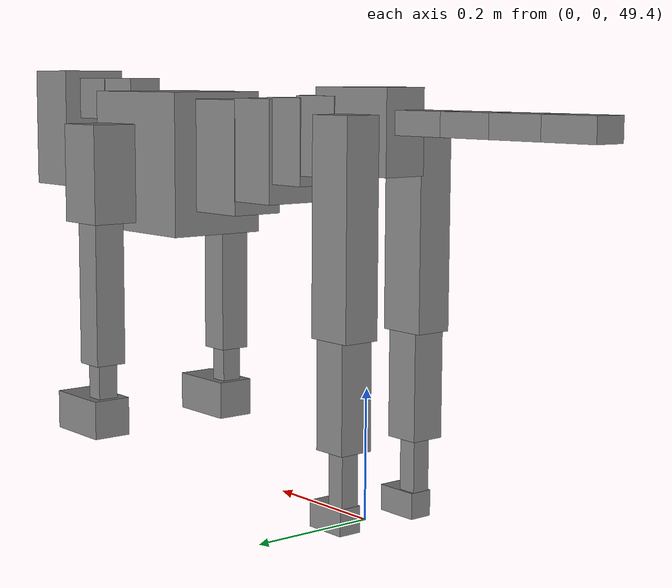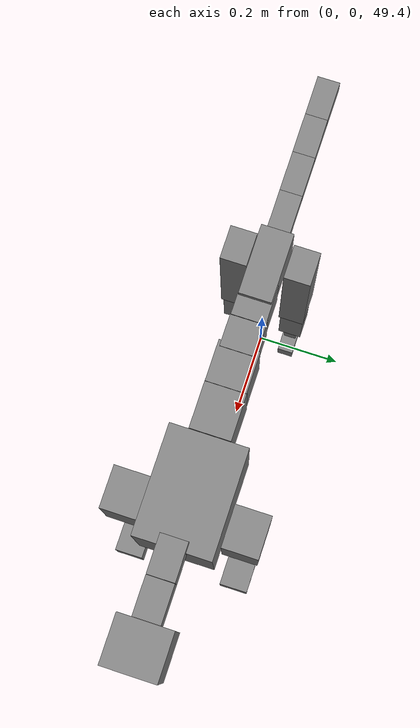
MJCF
<mujoco model="dog">

    <default>
        <joint armature="0.02" stiffness="1" damping="0.2" limited="true"/>
        <geom condim="3" friction="1 0.05 0.05" margin="0.01"/>
        <motor ctrllimited="true" ctrlrange="-1.0 1.0" forcelimited="true" gear="50"/>
    </default>

    <compiler inertiafromgeom="true" angle="radian"/>

    <option timestep="0.016" iterations="50" tolerance="1e-10" solver="Newton" jacobian="dense" cone="pyramidal"/>

    <size nconmax="20000" njmax="60000" nstack="5000000"/>
    <visual>
        <map force="0.1" zfar="30"/>
        <rgba haze="0.15 0.25 0.35 1"/>
        <quality shadowsize="2048"/>
        <global offwidth="800" offheight="800"/>
    </visual>

    <asset>
        <texture type="skybox" builtin="gradient" rgb1="0.3 0.5 0.7" rgb2="0 0 0" width="512" height="512"/>
        <texture name="texplane" type="2d" builtin="checker" rgb1=".2 .3 .4" rgb2=".1 0.15 0.2" width="512" height="512"
                 mark="cross" markrgb=".8 .8 .8"/>
        <texture name="texgeom" type="cube" builtin="flat" mark="cross" width="127" height="1278" rgb1="0.8 0.6 0.4"
                 rgb2="0.8 0.6 0.4" markrgb="1 1 1" random="0.01"/>

        <material name="matplane" reflectance="0.3" texture="texplane" texrepeat="1 1" texuniform="true"/>
        <material name="matgeom" texture="texgeom" texuniform="true" rgba="0.8 0.6 .4 1"/>
    </asset>

    <worldbody>
        <geom name="floor" pos="0 0 0" size="0 0 .25" type="plane" material="matplane" condim="3"/>

        <light directional="false" diffuse=".2 .2 .2" specular="0 0 0" pos="0 0 5" dir="0 0 -1" castshadow="false"/>
        <light mode="targetbodycom" target="torso" directional="false" diffuse=".8 .8 .8" specular="0.3 0.3 0.3"
               pos="0 0 4.0" dir="0 0 -1"/>

        <body name="root" pos="0 0 50">
            <freejoint name="root_1"/>
            <geom type="box" pos="0 0 -0.02" size="0.0774  0.0358  0.063" density="2030"/>

            <body name="spine1" pos="0.054 0 0">
                <joint name="spine1_y" axis="0 1 0" range="0 0.7" limited="true"/>
                <geom type="box" pos="0.02375 0 -0.03" size="0.04375  0.0375  0.05985" density="2030"/>

                <body name="spine2" pos="0.0612 0 0">
                    <joint name="spine2_y" axis="0 1 0" range="-0.15 0.15" limited="true"/>
                    <geom type="box" pos="0.03555  0  -0.04" size="0.04055  0.039  0.06615" density="2030"/>

                    <body name="spine3" pos="0.0730 0 0">
                        <joint name="spine3_y" axis="0 1 0" range="-0.15 0.15" limited="true"/>
                        <geom type="box" pos="0.03555  0  -0.057" size="0.04555  0.0445  0.081" density="2030"/>

                        <body name="spine4" pos="0.0780 0 0">
                            <joint name="spine4_y" axis="0 1 0" range="-0.15 0.15" limited="true"/>
                            <geom type="box" pos="0.05265  0  -0.07" size="0.05265  0.045  0.09135" density="2030"/>

                            <body name="torso" pos="0.1082 0 0">
                                <joint name="torso_y" axis="0 1 0" range="-0.15 0.15" limited="true"/>
                                <geom type="box" pos="0.11925  0  -0.085" size="0.11925  0.085  0.11745"
                                      density="2030"/>

                                <body name="neck1" pos="0.2160  0   0.0180">
                                    <joint name="neck1_y" axis="0 1 0" range="-1.2  -1" limited="true"/>
                                    <geom type="box" pos="0.0423  0  0" size="0.0423  0.03  0.036" density="2325"/>

                                    <body name="neck2" pos="0.0853  0  0">
                                        <joint name="neck2_y" axis="0 1 0" range="0.1  0" limited="true"/>
                                        <geom type="box" pos="0.0423  0  0" size="0.0423  0.03  0.036" density="2325"/>

                                        <body name="head" pos="0.0853  0  0">
                                            <joint name="head_y" axis="0 1 0" range="-0.3  -0.2" limited="true"/>
                                            <geom type="box" pos="0.0531  0  -0.055" size="0.0531  0.06  0.1044"
                                                  density="4030"/>

                                        </body>
                                    </body>
                                </body>

                                <body name="front_shoulder" pos="0.156  0   -0.0480">
                                    <joint name="front_shoulder_y" axis="0 1 0" range="-1 1.5" limited="true"/>
                                    <geom type="box" pos="0 0.13 -0.0555" size="0.0466  0.0398  0.0822" density="1158"/>
                                    <geom type="box" pos="0 -0.13 -0.0555" size="0.0466  0.0398  0.0822"
                                          density="1158"/>

                                    <body name="front_elbow" pos="0  0  -0.1111">
                                        <joint name="front_elbow_y" axis="0 1 0" range="-2 0" limited="true"/>
                                        <geom type="box" pos="0 0.13 -0.1342" size="0.0267  0.0273  0.1342"
                                              density="1081"/>
                                        <geom type="box" pos="0 -0.13 -0.1342" size="0.0267  0.0273  0.1342"
                                              density="1081"/>

                                        <body name="front_wrist" pos="0  0  -0.2684">
                                            <joint name="front_wrist_y" axis="0 1 0" range="-0.2 0" limited="true"/>
                                            <geom type="box" pos="0 0.13 -0.0369" size="0.0159  0.0177  0.0501"
                                                  density="1664"/>
                                            <geom type="box" pos="0 -0.13 -0.0369" size="0.0159  0.0177  0.0501"
                                                  density="1664"/>

                                            <body name="front_finger_end" pos="0  0  -0.0739">
                                                <joint name="front_finger_y" axis="0 1 0" range="-0.4 1"
                                                       limited="true"/>
                                                <geom type="box" pos="0.0331  0.13  -0.0174"
                                                      size="0.0608  0.0331  0.0324" density="1515"/>
                                                <geom type="box" pos="0.0331  -0.13  -0.0174"
                                                      size="0.0608  0.0331  0.0324" density="1515"/>

                                            </body>

                                        </body>
                                    </body>
                                </body>

                            </body>
                        </body>
                    </body>
                </body>
            </body>

            <body name="back_hip" pos="-0.03 0 -0.018">
                <joint name="back_hip_y" axis="0 1 0" range="-1.5 0.3" limited="true"/>
                <geom type="box" pos="0 0.07 -0.1371" size="0.0375  0.0294  0.1599" density="1154"/>
                <geom type="box" pos="0 -0.07 -0.1371" size="0.0375  0.0294  0.1599" density="1154"/>

                <body name="back_knee" pos="0  0  -0.2742">
                    <joint name="back_knee_y" axis="0 1 0" range="0 2.8" limited="true"/>
                    <geom type="box" pos="0 0.07 -0.0848" size="0.0278  0.0274  0.1003" density="1227"/>
                    <geom type="box" pos="0 -0.07 -0.0848" size="0.0278  0.0274  0.1003" density="1227"/>

                    <body name="back_ankle" pos="0  0  -0.1695">
                        <joint name="back_ankle_y" axis="0 1 0" range="-2.2 0" limited="true"/>
                        <geom type="box" pos="0 0.07 -0.0561" size="0.0148  0.0148  0.0674" density="1284"/>
                        <geom type="box" pos="0 -0.07 -0.0561" size="0.0148  0.0148  0.0674" density="1284"/>

                        <body name="back_toe_end" pos="0  0  -0.1122">
                            <joint name="back_toe_y" axis="0 1 0" range="-0.4 1" limited="true"/>
                            <geom type="box" pos="0.0186  0.07  -0.0049" size="0.0340  0.0186  0.0199" density="1515"/>
                            <geom type="box" pos="0.0186  -0.07  -0.0049" size="0.0340  0.0186  0.0199" density="1515"/>

                        </body>
                    </body>
                </body>
            </body>

            <body name="tail1" pos="-0.074 0 -0.006">
                <joint name="tail1_y" axis="0 1 0" range="-0.2 0.2" limited="true"/>
                <geom type="box" pos="-0.0536  0  0" size="0.045  0.025  0.0175" density="1587"/>

                <body name="tail2" pos="-0.09 0 0">
                    <joint name="tail2_y" axis="0 1 0" range="-0.2 0.2" limited="true"/>
                    <geom type="box" pos="-0.0536  0  0" size="0.045  0.025  0.0175" density="1587"/>

                    <body name="tail3" pos="-0.09 0 0">
                        <joint name="tail3_y" axis="0 1 0" range="-0.2 0.2" limited="true"/>
                        <geom type="box" pos="-0.0536  0  0" size="0.045  0.025  0.0175" density="1587"/>

                        <body name="tail4" pos="-0.09 0 0">
                            <joint name="tail4_y" axis="0 1 0" range="-0.2 0.2" limited="true"/>
                            <geom type="box" pos="-0.0536  0  0" size="0.045  0.025  0.0175" density="1587"/>

                        </body>
                    </body>
                </body>
            </body>
        </body>
    </worldbody>

    <actuator>
        <motor joint="spine1_y" forcerange="-150 150     "/>
        <motor joint="spine2_y" forcerange="-150 150     "/>
        <motor joint="spine3_y" forcerange="-150 150     "/>
        <motor joint="spine4_y" forcerange="-150 150     "/>
        <motor joint="torso_y" forcerange="-150 150     "/>
        <motor joint="neck1_y" forcerange="-100 100       "/>
        <motor joint="neck2_y" forcerange="-100 100       "/>
        <motor joint="head_y" forcerange="-150 150       "/>
        <motor joint="front_shoulder_y" forcerange="-175.81 189.71"/>
        <motor joint="front_elbow_y" forcerange="-115.69 182.69"/>
        <motor joint="front_wrist_y" forcerange="-67.64 73.68"/>
        <motor joint="front_finger_y" forcerange="-70.76 66.04"/>
        <motor joint="back_hip_y" forcerange="-315.56 277.00"/>
        <motor joint="back_knee_y" forcerange="-212.09 386.93"/>
        <motor joint="back_angle_y" forcerange="-77.15 59.43"/>
        <motor joint="back_toe_y" forcerange="-32.24 36.23"/>
        <motor joint="tail1_y" forcerange="-50 50     "/>
        <motor joint="tail2_y" forcerange="-50 50     "/>
        <motor joint="tail3_y" forcerange="-50 50     "/>
        <motor joint="tail4_y" forcerange="-50 50     "/>
    </actuator>
</mujoco>
